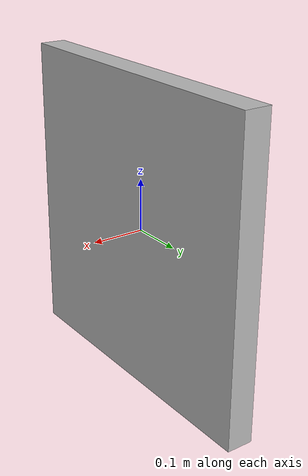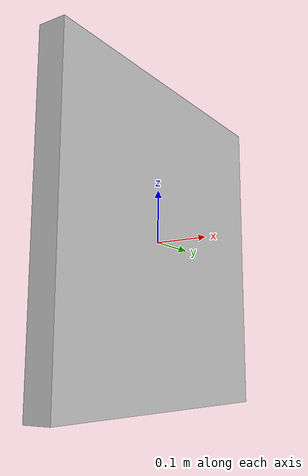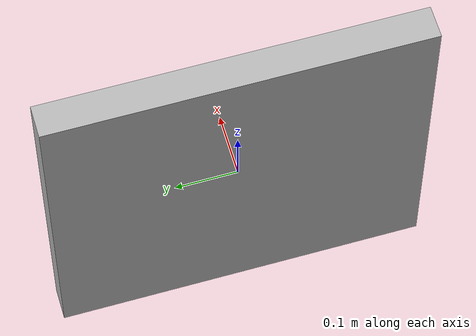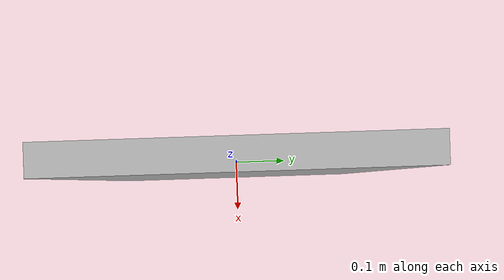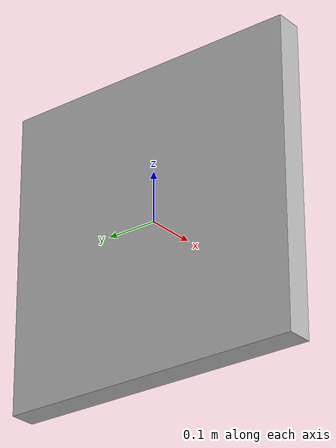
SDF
<?xml version='1.0'?>
<sdf version="1.6">
  <model name="noncrack_5">
    <static>true</static>
    <link name="link">
      <collision name="collision">
        <geometry>
          <box>
            <size>1 1 1</size>
          </box>
        </geometry>
      </collision>
      <visual name="visual">
        <geometry>
          <mesh>
            <scale>0.3 0.3 0.3</scale>
            <uri>model://noncrack_5/noncrack_5.dae</uri>
          </mesh>
        </geometry>
      </visual>
    </link>
  </model>
</sdf>
